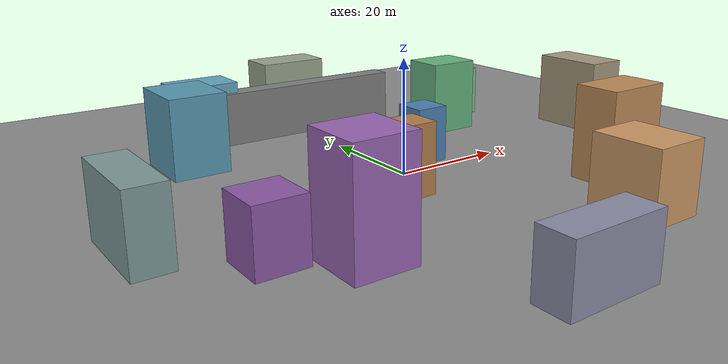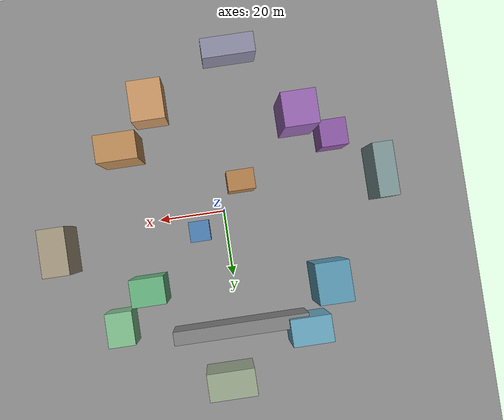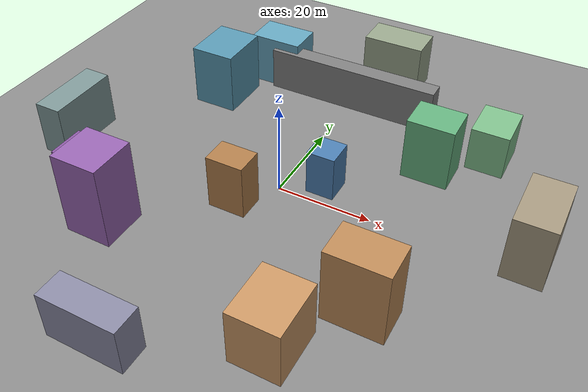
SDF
<?xml version="1.0" ?>
<sdf version="1.8">
  <world name="scenario_multi_gnb_experiment">

    <physics name="1ms" type="ignored">
      <max_step_size>0.001</max_step_size>
      <real_time_factor>1.0</real_time_factor>
    </physics>

    <plugin filename="ignition-gazebo-physics-system"
            name="ignition::gazebo::systems::Physics"/>
    <plugin filename="ignition-gazebo-scene-broadcaster-system"
            name="ignition::gazebo::systems::SceneBroadcaster"/>
    <plugin filename="ignition-gazebo-user-commands-system"
            name="ignition::gazebo::systems::UserCommands"/>

    <!--
      Heatmap Plugin - Multi-gNB Configuration
      Starts with single gNB; additional gNBs added via runtime commands
    -->
    <plugin filename="libHeatmapPlugin.so"
            name="heatmap_plugin::HeatmapPlugin">
      <!-- High resolution grid for detailed analysis -->
      <grid_w>200</grid_w>
      <grid_h>200</grid_h>
      <cell_size>0.5</cell_size>

      <!-- 5G NR FR1 parameters -->
      <frequency_hz>3500000000</frequency_hz>
      <tx_dbm>30.0</tx_dbm>
      <tx_height>12.0</tx_height>
      <rx_height>1.5</rx_height>
      <tx_gain_dbi>8.0</tx_gain_dbi>
      <rx_gain_dbi>0.0</rx_gain_dbi>

      <!-- Start with single central gNB -->
      <gnb_pose>0 0 12 0 0 0</gnb_pose>

      <propagation_model>3gpp_umi</propagation_model>
      <wall_loss_db>15.0</wall_loss_db>
      <reflection_coeff>0.7</reflection_coeff>
      <combine_mode>best_server</combine_mode>
      <include_shadowing>false</include_shadowing>
      <max_reflections>2</max_reflections>
    </plugin>

    <!-- GUI Configuration -->
    <gui fullscreen="0">
      <plugin filename="GzScene3D" name="3D View">
        <ignition-gui>
          <title>3D View</title>
          <property type="bool" key="showTitleBar">true</property>
          <property type="string" key="state">docked</property>
        </ignition-gui>
        <engine>ogre2</engine>
        <scene>scene</scene>
        <ambient_light>0.4 0.4 0.4</ambient_light>
        <background_color>0.8 0.8 0.8</background_color>
        <camera_pose>70 -70 60 0 0.6 2.35</camera_pose>
      </plugin>

      <plugin filename="WorldControl" name="World control">
        <ignition-gui>
          <title>World control</title>
          <property type="bool" key="showTitleBar">false</property>
          <property type="string" key="state">floating</property>
          <anchors target="3D View">
            <line own="left" target="left"/>
            <line own="bottom" target="bottom"/>
          </anchors>
        </ignition-gui>
        <play_pause>true</play_pause>
        <step>true</step>
        <start_paused>false</start_paused>
      </plugin>

      <plugin filename="ImageDisplay" name="RF Heatmap">
        <ignition-gui>
          <title>Multi-gNB Signal Heatmap</title>
          <property type="bool" key="showTitleBar">true</property>
          <property type="string" key="state">docked</property>
        </ignition-gui>
        <topic>/gnb/heatmap</topic>
      </plugin>

      <plugin filename="TopicViewer" name="Status">
        <ignition-gui>
          <title>System Status</title>
          <property type="bool" key="showTitleBar">true</property>
          <property type="string" key="state">docked</property>
        </ignition-gui>
        <topic_name>/gnb/heatmap/status</topic_name>
      </plugin>

      <plugin filename="TopicViewer" name="Query Results">
        <ignition-gui>
          <title>Signal Query</title>
          <property type="bool" key="showTitleBar">true</property>
          <property type="string" key="state">docked</property>
        </ignition-gui>
        <topic_name>/gnb/heatmap/click_info</topic_name>
      </plugin>

      <plugin filename="EntityTree" name="Entity tree">
        <ignition-gui>
          <title>Entity tree</title>
          <property type="bool" key="showTitleBar">true</property>
          <property type="string" key="state">docked</property>
        </ignition-gui>
      </plugin>
    </gui>

    <!-- Lighting -->
    <light type="directional" name="sun">
      <cast_shadows>true</cast_shadows>
      <pose>0 0 50 0 0 0</pose>
      <diffuse>0.8 0.8 0.8 1</diffuse>
      <specular>0.2 0.2 0.2 1</specular>
      <direction>-0.5 0.1 -0.9</direction>
    </light>

    <!-- Ground Plane - Neutral grey -->
    <model name="ground_plane">
      <static>true</static>
      <link name="link">
        <collision name="collision">
          <geometry>
            <plane><normal>0 0 1</normal><size>250 250</size></plane>
          </geometry>
        </collision>
        <visual name="visual">
          <geometry>
            <plane><normal>0 0 1</normal><size>250 250</size></plane>
          </geometry>
          <material>
            <ambient>0.55 0.55 0.55 1</ambient>
            <diffuse>0.55 0.55 0.55 1</diffuse>
            <specular>0.1 0.1 0.1 1</specular>
            <emissive>0 0 0 1</emissive>
          </material>
        </visual>
      </link>
    </model>

    <!-- QUADRANT MARKERS - Visual reference for cell boundary analysis    -->

    <!-- Central tower marker (gNB site 0) -->
    <model name="site_marker_central">
      <static>true</static>
      <pose>0 0 6 0 0 0</pose>
      <link name="link">
        <visual name="pole">
          <geometry><cylinder><radius>0.2</radius><length>12</length></cylinder></geometry>
          <material>
            <ambient>0.4 0.4 0.4 1</ambient>
            <diffuse>0.4 0.4 0.4 1</diffuse>
            <specular>0.1 0.1 0.1 1</specular>
            <emissive>0 0 0 1</emissive>
          </material>
        </visual>
        <visual name="antenna">
          <pose>0 0 6.5 0 0 0</pose>
          <geometry><box><size>0.5 0.2 1.0</size></box></geometry>
          <material>
            <ambient>0.9 0.15 0.15 1</ambient>
            <diffuse>0.9 0.15 0.15 1</diffuse>
            <specular>0.2 0.2 0.2 1</specular>
            <emissive>0 0 0 1</emissive>
          </material>
        </visual>
      </link>
    </model>

    <!-- STRATEGIC BUILDING PLACEMENT                                       -->
    <!-- Creates interesting coverage patterns and shadow zones             -->

    <!-- Central cluster - creates coverage holes near center -->
    <model name="central_bldg_1">
      <static>true</static>
      <pose>8 5 5 0 0 0</pose>
      <link name="link">
        <collision name="collision">
          <geometry><box><size>6 6 10</size></box></geometry>
        </collision>
        <visual name="visual">
          <geometry><box><size>6 6 10</size></box></geometry>
          <material>
            <ambient>0.3 0.5 0.7 1</ambient>
            <diffuse>0.3 0.5 0.7 1</diffuse>
            <specular>0.1 0.1 0.1 1</specular>
            <emissive>0 0 0 1</emissive>
          </material>
        </visual>
      </link>
    </model>

    <model name="central_bldg_2">
      <static>true</static>
      <pose>-6 -8 6 0 0 0</pose>
      <link name="link">
        <collision name="collision">
          <geometry><box><size>8 6 12</size></box></geometry>
        </collision>
        <visual name="visual">
          <geometry><box><size>8 6 12</size></box></geometry>
          <material>
            <ambient>0.7 0.5 0.3 1</ambient>
            <diffuse>0.7 0.5 0.3 1</diffuse>
            <specular>0.1 0.1 0.1 1</specular>
            <emissive>0 0 0 1</emissive>
          </material>
        </visual>
      </link>
    </model>

    <!-- NE Quadrant buildings -->
    <model name="bldg_ne_1">
      <static>true</static>
      <pose>25 20 7 0 0 0</pose>
      <link name="link">
        <collision name="collision">
          <geometry><box><size>10 8 14</size></box></geometry>
        </collision>
        <visual name="visual">
          <geometry><box><size>10 8 14</size></box></geometry>
          <material>
            <ambient>0.4 0.7 0.5 1</ambient>
            <diffuse>0.4 0.7 0.5 1</diffuse>
            <specular>0.1 0.1 0.1 1</specular>
            <emissive>0 0 0 1</emissive>
          </material>
        </visual>
      </link>
    </model>

    <model name="bldg_ne_2">
      <static>true</static>
      <pose>35 30 5 0 0 0</pose>
      <link name="link">
        <collision name="collision">
          <geometry><box><size>8 10 10</size></box></geometry>
        </collision>
        <visual name="visual">
          <geometry><box><size>8 10 10</size></box></geometry>
          <material>
            <ambient>0.5 0.75 0.55 1</ambient>
            <diffuse>0.5 0.75 0.55 1</diffuse>
            <specular>0.1 0.1 0.1 1</specular>
            <emissive>0 0 0 1</emissive>
          </material>
        </visual>
      </link>
    </model>

    <!-- SE Quadrant - potential gNB site area -->
    <model name="bldg_se_1">
      <static>true</static>
      <pose>28 -22 8 0 0 0</pose>
      <link name="link">
        <collision name="collision">
          <geometry><box><size>12 8 16</size></box></geometry>
        </collision>
        <visual name="visual">
          <geometry><box><size>12 8 16</size></box></geometry>
          <material>
            <ambient>0.75 0.55 0.35 1</ambient>
            <diffuse>0.75 0.55 0.35 1</diffuse>
            <specular>0.1 0.1 0.1 1</specular>
            <emissive>0 0 0 1</emissive>
          </material>
        </visual>
      </link>
    </model>

    <model name="bldg_se_2">
      <static>true</static>
      <pose>18 -35 6 0 0 0</pose>
      <link name="link">
        <collision name="collision">
          <geometry><box><size>10 12 12</size></box></geometry>
        </collision>
        <visual name="visual">
          <geometry><box><size>10 12 12</size></box></geometry>
          <material>
            <ambient>0.8 0.6 0.4 1</ambient>
            <diffuse>0.8 0.6 0.4 1</diffuse>
            <specular>0.1 0.1 0.1 1</specular>
            <emissive>0 0 0 1</emissive>
          </material>
        </visual>
      </link>
    </model>

    <!-- SW Quadrant -->
    <model name="bldg_sw_1">
      <static>true</static>
      <pose>-25 -25 9 0 0 0</pose>
      <link name="link">
        <collision name="collision">
          <geometry><box><size>10 10 18</size></box></geometry>
        </collision>
        <visual name="visual">
          <geometry><box><size>10 10 18</size></box></geometry>
          <material>
            <ambient>0.6 0.4 0.7 1</ambient>
            <diffuse>0.6 0.4 0.7 1</diffuse>
            <specular>0.1 0.1 0.1 1</specular>
            <emissive>0 0 0 1</emissive>
          </material>
        </visual>
      </link>
    </model>

    <model name="bldg_sw_2">
      <static>true</static>
      <pose>-35 -18 5 0 0 0</pose>
      <link name="link">
        <collision name="collision">
          <geometry><box><size>8 8 10</size></box></geometry>
        </collision>
        <visual name="visual">
          <geometry><box><size>8 8 10</size></box></geometry>
          <material>
            <ambient>0.55 0.35 0.65 1</ambient>
            <diffuse>0.55 0.35 0.65 1</diffuse>
            <specular>0.1 0.1 0.1 1</specular>
            <emissive>0 0 0 1</emissive>
          </material>
        </visual>
      </link>
    </model>

    <!-- NW Quadrant -->
    <model name="bldg_nw_1">
      <static>true</static>
      <pose>-28 25 7 0 0 0</pose>
      <link name="link">
        <collision name="collision">
          <geometry><box><size>10 12 14</size></box></geometry>
        </collision>
        <visual name="visual">
          <geometry><box><size>10 12 14</size></box></geometry>
          <material>
            <ambient>0.35 0.6 0.7 1</ambient>
            <diffuse>0.35 0.6 0.7 1</diffuse>
            <specular>0.1 0.1 0.1 1</specular>
            <emissive>0 0 0 1</emissive>
          </material>
        </visual>
      </link>
    </model>

    <model name="bldg_nw_2">
      <static>true</static>
      <pose>-20 38 6 0 0 0</pose>
      <link name="link">
        <collision name="collision">
          <geometry><box><size>12 8 12</size></box></geometry>
        </collision>
        <visual name="visual">
          <geometry><box><size>12 8 12</size></box></geometry>
          <material>
            <ambient>0.4 0.65 0.75 1</ambient>
            <diffuse>0.4 0.65 0.75 1</diffuse>
            <specular>0.1 0.1 0.1 1</specular>
            <emissive>0 0 0 1</emissive>
          </material>
        </visual>
      </link>
    </model>

    <!-- Long barrier building - creates interesting cell boundary effects -->
    <model name="barrier_bldg">
      <static>true</static>
      <pose>0 35 5 0 0 0</pose>
      <link name="link">
        <collision name="collision">
          <geometry><box><size>40 4 10</size></box></geometry>
        </collision>
        <visual name="visual">
          <geometry><box><size>40 4 10</size></box></geometry>
          <material>
            <ambient>0.5 0.5 0.5 1</ambient>
            <diffuse>0.5 0.5 0.5 1</diffuse>
            <specular>0.1 0.1 0.1 1</specular>
            <emissive>0 0 0 1</emissive>
          </material>
        </visual>
      </link>
    </model>

    <!-- Outer ring buildings - defines coverage boundary -->
    <model name="outer_bldg_n">
      <static>true</static>
      <pose>5 50 6 0 0 0</pose>
      <link name="link">
        <collision name="collision">
          <geometry><box><size>14 8 12</size></box></geometry>
        </collision>
        <visual name="visual">
          <geometry><box><size>14 8 12</size></box></geometry>
          <material>
            <ambient>0.6 0.65 0.55 1</ambient>
            <diffuse>0.6 0.65 0.55 1</diffuse>
            <specular>0.1 0.1 0.1 1</specular>
            <emissive>0 0 0 1</emissive>
          </material>
        </visual>
      </link>
    </model>

    <model name="outer_bldg_e">
      <static>true</static>
      <pose>50 5 7 0 0 0</pose>
      <link name="link">
        <collision name="collision">
          <geometry><box><size>8 14 14</size></box></geometry>
        </collision>
        <visual name="visual">
          <geometry><box><size>8 14 14</size></box></geometry>
          <material>
            <ambient>0.65 0.6 0.5 1</ambient>
            <diffuse>0.65 0.6 0.5 1</diffuse>
            <specular>0.1 0.1 0.1 1</specular>
            <emissive>0 0 0 1</emissive>
          </material>
        </visual>
      </link>
    </model>

    <model name="outer_bldg_s">
      <static>true</static>
      <pose>-8 -48 5 0 0 0</pose>
      <link name="link">
        <collision name="collision">
          <geometry><box><size>16 6 10</size></box></geometry>
        </collision>
        <visual name="visual">
          <geometry><box><size>16 6 10</size></box></geometry>
          <material>
            <ambient>0.55 0.55 0.65 1</ambient>
            <diffuse>0.55 0.55 0.65 1</diffuse>
            <specular>0.1 0.1 0.1 1</specular>
            <emissive>0 0 0 1</emissive>
          </material>
        </visual>
      </link>
    </model>

    <model name="outer_bldg_w">
      <static>true</static>
      <pose>-48 -5 6 0 0 0</pose>
      <link name="link">
        <collision name="collision">
          <geometry><box><size>6 16 12</size></box></geometry>
        </collision>
        <visual name="visual">
          <geometry><box><size>6 16 12</size></box></geometry>
          <material>
            <ambient>0.5 0.6 0.6 1</ambient>
            <diffuse>0.5 0.6 0.6 1</diffuse>
            <specular>0.1 0.1 0.1 1</specular>
            <emissive>0 0 0 1</emissive>
          </material>
        </visual>
      </link>
    </model>

  </world>
</sdf>
